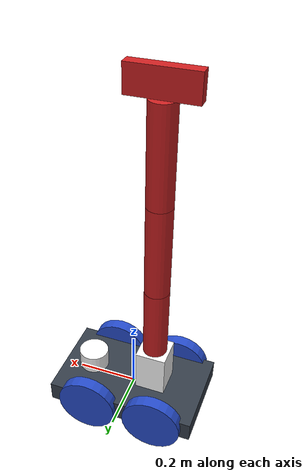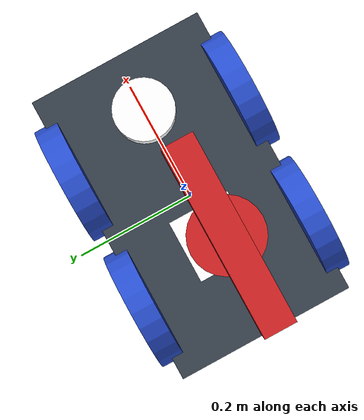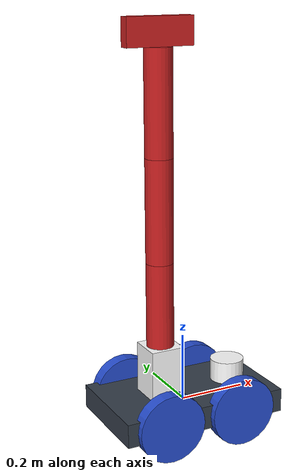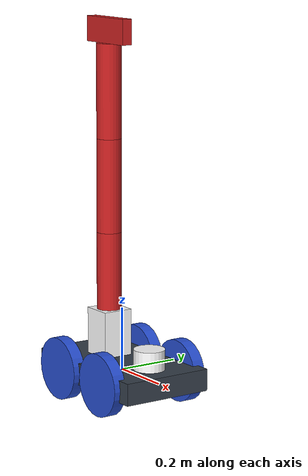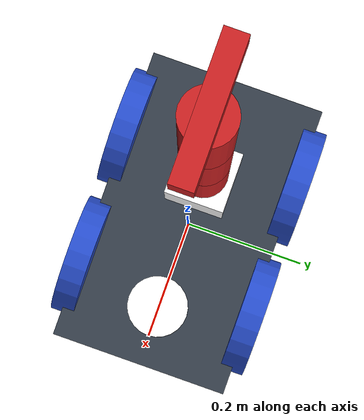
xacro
<?xml version="1.0" ?>
<robot name="robocluedo_robot" xmlns:xacro="http://www.ros.org/wiki/xacro">

	<xacro:include filename="robocluedo_gazebo_materials.xacro" />

	<xacro:include filename="robocluedo_chassis.xacro" />
	<xacro:include filename="robocluedo_arm.xacro" />
	<xacro:include filename="robocluedo_arm_gripper.xacro" />

	<xacro:include filename="robocluedo_sensing.xacro" />
	<xacro:include filename="robocluedo_gazebo_sensing.xacro" />

	<xacro:include filename="robocluedo_gazebo_plugins.xacro" />
	<xacro:include filename="robocluedo_transmission.xacro" />

</robot>

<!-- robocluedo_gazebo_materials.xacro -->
<robot name="robocluedo_robot" xmlns:xacro="http://www.ros.org/wiki/xacro">

    <material name="neongreen">
        <color rgba="0.047058823529411764 1.0 0.047058823529411764 1.0" />
    </material>
    <material name="black">
        <color rgba="0.0 0.0 0.0 1.0" />
    </material>
    <material name="acidgreen">
        <color rgba="0.5607843137254902 0.996078431372549 0.03529411764705882 1.0" />
    </material>
    <material name="blue">
        <color rgba="0.203125 0.23828125 0.28515625 1.0" />
    </material>
    <material name="green">
        <color rgba="0.0 0.8 0.0 1.0" />
    </material>
    <material name="ocre">
        <color rgba="0.7764705882352941 0.611764705882353 0.01568627450980392 1.0" />
    </material>
    <material name="grey">
        <color rgba="0.2 0.2 0.2 1.0" />
    </material>
    <material name="bruise">
        <color rgba="0.49411764705882355 0.25098039215686274 0.44313725490196076 1.0" />
    </material>
    <material name="orange">
        <color rgba="1.0 0.423529411765 0.0392156862745 1.0" />
    </material>
    <material name="brown">
        <color rgba="0.870588235294 0.811764705882 0.764705882353 1.0" />
    </material>
    <material name="burgundy">
        <color rgba="0.3803921568627451 0.0 0.13725490196078433 1.0" />
    </material>
    <material name="dusk">
        <color rgba="0.3058823529411765 0.32941176470588235 0.5058823529411764 1.0" />
    </material>
    <material name="red">
        <color rgba="0.80078125 0.12890625 0.1328125 1.0" />
    </material>
    <material name="white">
        <color rgba="1.0 1.0 1.0 1.0" />
    </material>
    <gazebo reference="base_link">
        <material>Gazebo/Orange</material>
    </gazebo>
    <gazebo reference="link_left_wheel">
        <material>Gazebo/Blue</material>
    </gazebo>
    <gazebo reference="link_right_wheel">
        <material>Gazebo/Blue</material>
    </gazebo>
    <gazebo reference="link_a_left_wheel">
        <material>Gazebo/Blue</material>
    </gazebo>
    <gazebo reference="link_a_right_wheel">
        <material>Gazebo/Blue</material>
    </gazebo>
    <gazebo reference="arm_base_link">
        <material>Gazebo/Red</material>
    </gazebo>
    <gazebo reference="arm_link_01">
        <material>Gazebo/Red</material>
    </gazebo>
    <gazebo reference="arm_link_02">
        <material>Gazebo/Red</material>
    </gazebo>
    <gazebo reference="arm_link_03">
        <material>Gazebo/Red</material>
    </gazebo>
    <gazebo reference="arm_link_03">
        <material>Gazebo/Red</material>
    </gazebo>
    <gazebo reference="arm_link_04">
        <material>Gazebo/Red</material>
    </gazebo>

</robot>

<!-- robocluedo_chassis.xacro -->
<robot name="robocluedo_robot" xmlns:xacro="http://www.ros.org/wiki/xacro">

    <link name="base_link">
        <!-- pose and inertial -->
        <pose>0 0 0.1 0 0 0</pose>

		<inertial>
            <mass value="0.5" />
            <origin rpy="0 0 0" xyz="0 0 0.1" />
            <inertia ixx="0.0395416666667" ixy="0" ixz="0" iyy="0.106208333333" iyz="0" izz="0.106208333333" />
        </inertial>

        <!-- chassis collision -->
        <collision name="collision_chassis">
            <geometry>
                <box size="0.5 0.3 0.07" />
            </geometry>
        </collision>
        <visual>
            <origin rpy="0 0 0" xyz="0 0 0" />
            <geometry>
                <box size="0.5 0.3 0.07" />
            </geometry>
            <material name="blue" />
        </visual>

        <!-- caster front collision -->
    </link>

    <link name="link_right_wheel">

		<inertial>
            <mass value="0.2" />
            <origin rpy="0 1.5707 1.5707" xyz="0 0 0" />
            <inertia ixx="0.000526666666667" ixy="0" ixz="0" iyy="0.000526666666667" iyz="0" izz="0.001" />
        </inertial>

        <collision name="link_right_wheel_collision">
            <origin rpy="0 1.5707 1.5707" xyz="0 0 0" />
            <geometry>
                <cylinder length="0.04" radius="0.1" />
            </geometry>
        </collision>
        <visual name="link_right_wheel_visual">
            <origin rpy="0 1.5707 1.5707" xyz="0 0 0" />
            <geometry>
                <cylinder length="0.04" radius="0.1" />
            </geometry>
        </visual>
    </link>

    <link name="link_left_wheel">
		<inertial>
            <mass value="0.2" />
            <origin rpy="0 1.5707 1.5707" xyz="0 0 0" />
            <inertia ixx="0.000526666666667" ixy="0" ixz="0" iyy="0.000526666666667" iyz="0" izz="0.001" />
        </inertial>

        <collision name="link_right_wheel_collision">
            <origin rpy="0 1.5707 1.5707" xyz="0 0 0" />
            <geometry>
                <cylinder length="0.04" radius="0.1" />
            </geometry>
        </collision>
        <visual name="link_left_wheel_visual">
            <origin rpy="0 1.5707 1.5707" xyz="0 0 0" />
            <geometry>
                <cylinder length="0.04" radius="0.1" />
            </geometry>
        </visual>
    </link>

    <joint name="joint_right_wheel" type="continuous">
        <origin rpy="0 0 0" xyz="0.11 0.15 0" />
        <child link="link_right_wheel" />
        <parent link="base_link" />
        <axis rpy="0 0 0" xyz="0 1 0" />
        <limit effort="10000" velocity="1000" />
        <joint_properties damping="1.0" friction="1.0" />
    </joint>
    <joint name="joint_left_wheel" type="continuous">
        <origin rpy="0 0 0" xyz="0.11 -0.15 0" />
        <child link="link_left_wheel" />
        <parent link="base_link" />
        <axis rpy="0 0 0" xyz="0 1 0" />
        <limit effort="10000" velocity="1000" />
        <joint_properties damping="1.0" friction="1.0" />
    </joint>

    <link name="link_a_right_wheel">

		<inertial>
            <mass value="0.2" />
            <origin rpy="0 1.5707 1.5707" xyz="0 0 0" />
            <inertia ixx="0.000526666666667" ixy="0" ixz="0" iyy="0.000526666666667" iyz="0" izz="0.001" />
        </inertial>

        <collision name="link_right_wheel_collision">
            <origin rpy="0 1.5707 1.5707" xyz="0 0 0" />
            <geometry>
                <cylinder length="0.04" radius="0.1" />
            </geometry>
            <surface>
                <friction>
                    <ode>
                        <mu>0</mu>
                        <mu2>0</mu2>
                        <slip1>1.0</slip1>
                        <slip2>1.0</slip2>
                    </ode>
                </friction>
            </surface>
        </collision>
        <visual name="link_right_wheel_visual">
            <origin rpy="0 1.5707 1.5707" xyz="0 0 0" />
            <geometry>
                <cylinder length="0.04" radius="0.1" />
            </geometry>
        </visual>
    </link>

    <link name="link_a_left_wheel">
		<inertial>
            <mass value="0.2" />
            <origin rpy="0 1.5707 1.5707" xyz="0 0 0" />
            <inertia ixx="0.000526666666667" ixy="0" ixz="0" iyy="0.000526666666667" iyz="0" izz="0.001" />
        </inertial>

        <collision name="link_right_wheel_collision">
            <origin rpy="0 1.5707 1.5707" xyz="0 0 0" />
            <geometry>
                <cylinder length="0.04" radius="0.1" />
            </geometry>
            <surface>
                <friction>
                    <ode>
                        <mu>0</mu>
                        <mu2>0</mu2>
                        <slip1>1.0</slip1>
                        <slip2>1.0</slip2>
                    </ode>
                </friction>
            </surface>
        </collision>
        <visual name="link_left_wheel_visual">
            <origin rpy="0 1.5707 1.5707" xyz="0 0 0" />
            <geometry>
                <cylinder length="0.04" radius="0.1" />
            </geometry>
        </visual>
    </link>

    <joint name="joint_a_right_wheel" type="continuous">
        <origin rpy="0 0 0" xyz="-0.12 0.15 0" />
        <child link="link_a_right_wheel" />
        <parent link="base_link" />
        <axis rpy="0 0 0" xyz="0 1 0" />
        <limit effort="10000" velocity="1000" />
        <joint_properties damping="1.0" friction="1.0" />
    </joint>
    <joint name="joint_a_left_wheel" type="continuous">
        <origin rpy="0 0 0" xyz="-0.12 -0.15 0" />
        <child link="link_a_left_wheel" />
        <parent link="base_link" />
        <axis rpy="0 0 0" xyz="0 1 0" />
        <limit effort="10000" velocity="1000" />
        <joint_properties damping="1.0" friction="1.0" />
    </joint>
</robot>

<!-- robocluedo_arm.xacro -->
<robot name="robocluedo_robot" xmlns:xacro="http://www.ros.org/wiki/xacro">

    <link name="arm_base_link">

		<inertial>
            <mass value="0.1" />
            <origin rpy="0 0 0" xyz="0 0 0" />
            <inertia ixx="0.0000416666667" ixy="0" ixz="0" iyy="0.0000416666667" iyz="0" izz="0.0000416666667" />
        </inertial>

        <collision>
            <origin rpy="0 0 0" xyz="0 0 0" />
            <geometry>
                <box size="0.1 0.1 0.15" />
            </geometry>
        </collision>
        <visual>
            <origin rpy="0 0 0" xyz="0 0 0" />
            <geometry>
                <box size="0.1 0.1 0.2" />
            </geometry>
            <material name="white" />
        </visual>
    </link>

    <joint name="arm_base_to_base" type="fixed">
        <origin rpy="0 0 0" xyz="-0.075 0 0.085" />
        <parent link="base_link" />
        <child link="arm_base_link" />
    </joint>

    <link name="arm_link_01">

		<inertial>
            <mass value="0.025" />
            <origin rpy="0 0 0" xyz="0 0 0.15" />
            <inertia ixx="0.000010279" ixy="0" ixz="0" iyy="0.000010279" iyz="0" izz="0.000007225" />
        </inertial>

        <collision>
            <origin rpy="0 0 0" xyz="0 0 0.15" />
            <geometry>
                <cylinder length="0.3" radius="0.04" />
            </geometry>
        </collision>
        <visual>
            <origin rpy="0 0 0" xyz="0 0 0.15" />
            <geometry>
                <cylinder length="0.3" radius="0.04" />
            </geometry>
            <material name="red" />
        </visual>
    </link>

    <joint name="arm_joint_01" type="revolute">
        <axis xyz="0 0 1" />
        <limit effort="1000.0" lower="-3.14" upper="3.14" velocity="0.2" />
        <origin rpy="0 0 0" xyz="0 0 0.04999999999999999" />
        <parent link="arm_base_link" />
        <child link="arm_link_01" />
    </joint>

    <link name="arm_link_02">

<inertial>
            <mass value="0.025" />
            <origin rpy="0 0 0" xyz="0 0 0.15" />
            <inertia ixx="0.000010279" ixy="0" ixz="0" iyy="0.000010279" iyz="0" izz="0.000007225" />
        </inertial>

        <collision>
            <origin rpy="0 0 0" xyz="0 0 0.15" />
            <geometry>
                <cylinder length="0.3" radius="0.04" />
            </geometry>
        </collision>
        <visual>
            <origin rpy="0 0 0" xyz="0 0 0.15" />
            <geometry>
                <cylinder length="0.3" radius="0.04" />
            </geometry>
            <material name="red" />
        </visual>
    </link>

    <joint name="arm_joint_02" type="revolute">
        <axis xyz="1 0 0" />
        <limit effort="1000.0" lower="-1.8" upper="1.8" velocity="0.2" />
        <origin rpy="0 0 0" xyz="0 0 0.3" />
        <parent link="arm_link_01" />
        <child link="arm_link_02" />
    </joint>

    <link name="arm_link_03">

<inertial>
            <mass value="0.025" />
            <origin rpy="0 0 0" xyz="0 0 0.15" />
            <inertia ixx="0.000010279" ixy="0" ixz="0" iyy="0.000010279" iyz="0" izz="0.000007225" />
        </inertial>

        <collision>
            <origin rpy="0 0 0" xyz="0 0 0.15" />
            <geometry>
                <cylinder length="0.3" radius="0.04" />
            </geometry>
        </collision>
        <visual>
            <origin rpy="0 0 0" xyz="0 0 0.15" />
            <geometry>
                <cylinder length="0.3" radius="0.04" />
            </geometry>
            <material name="red" />
        </visual>
    </link>

    <joint name="arm_joint_03" type="revolute">
        <axis xyz="1 0 0" />
        <limit effort="1000.0" lower="-1.8" upper="1.8" velocity="0.2" />
        <origin rpy="0 0 0" xyz="0 0 0.3" />
        <parent link="arm_link_02" />
        <child link="arm_link_03" />
    </joint>

</robot>

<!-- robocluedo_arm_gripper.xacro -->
<robot name="robocluedo_robot" xmlns:xacro="http://www.ros.org/wiki/xacro">

    <link name="cluedo_link">

		<inertial>
            <mass value="0.015" />
            <origin rpy="0 0 0" xyz="0 0 0" />
            <inertia ixx="0.000010279" ixy="0" ixz="0" iyy="0.000010279" iyz="0" izz="0.000007225" />
        </inertial>

        <collision>
            <origin rpy="0 0 1.57" xyz="0 0 0.04" />
            <geometry>
                <box size="0.034 0.2 0.08" />
            </geometry>
        </collision>
        <visual>
            <origin rpy="0 0 1.57" xyz="0 0 0.04" />
            <geometry>
                <box size="0.034 0.2 0.08" />
            </geometry>
            <material name="red" />
        </visual>
    </link>
    <joint name="arm_joint_04" type="revolute">
        <axis xyz="1 0 0" />
        <limit effort="1000.0" lower="-1.8" upper="1.8" velocity="0.5" />
        <origin rpy="0 0 0" xyz="0 0 0.3" />
        <parent link="arm_link_03" />
        <child link="cluedo_link" />
    </joint>

</robot>

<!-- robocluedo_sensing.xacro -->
<robot name="robocluedo_robot" xmlns:xacro="http://www.ros.org/wiki/xacro">

	<link name="laser">
		<inertial>
			<origin rpy="0 0 0" xyz="0 0 0" />
			<mass value="1" />
			<inertia ixx="0.0014583333333333334" ixy="0" ixz="0" iyy="0.0014583333333333334" iyz="0" izz="0.0012500000000000002" />
		</inertial>

		<visual>
			<origin rpy="0 0 0" xyz="0 0 0" />
			<geometry>
				<cylinder length="0.1" radius="0.05" />
			</geometry>
			<material name="white" />
		</visual>
		<collision>
			<origin rpy="0 0 0" xyz="0 0 0" />
			<geometry>
				<cylinder length="0.1" radius="0.05" />
			</geometry>
		</collision>
	</link>

	<joint name="joint_laser" type="fixed">
		<origin rpy="0 0 0" xyz="0.15 0 0.05" />
		<parent link="base_link" />
		<child link="laser" />
	</joint>

	<link name="camera_front_low">

	</link>

	<joint name="joint_camera_front_low" type="fixed">
		<origin rpy="0 0 0" xyz="0.2 0 0.1" />
		<parent link="base_link" />
		<child link="camera_front_low" />
	</joint>

	<link name="camera_left">

	</link>

	<joint name="joint_camera_left" type="fixed">
		<origin rpy="0 0 1.57" xyz="0 0.2 0.1" />
		<parent link="base_link" />
		<child link="camera_left" />
	</joint>

	<link name="camera_right">

	</link>

	<joint name="joint_camera_right" type="fixed">
		<origin rpy="0 0 -1.57" xyz="0 -0.2 0.1" />
		<parent link="base_link" />
		<child link="camera_right" />
	</joint>

	<link name="camera_arm">

	</link>

	<joint name="joint_camera_arm" type="fixed">
		<origin rpy="0 0 1.57" xyz="0 0 0.1" />
		<parent link="arm_link_03" />
		<child link="camera_arm" />
	</joint>

</robot>
